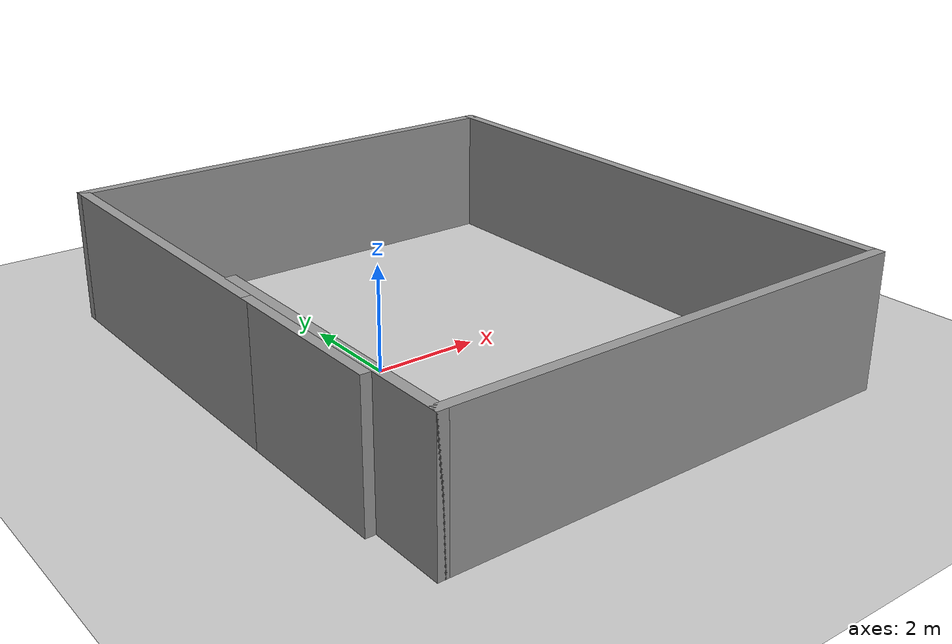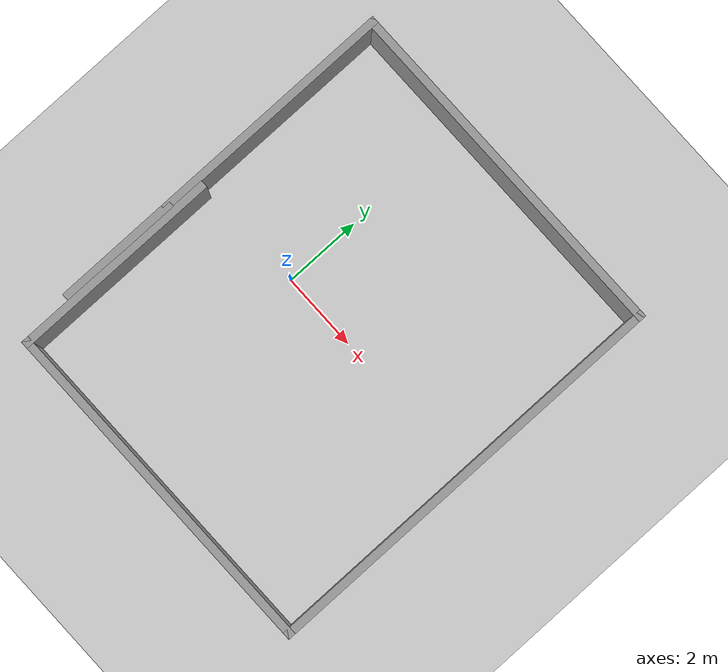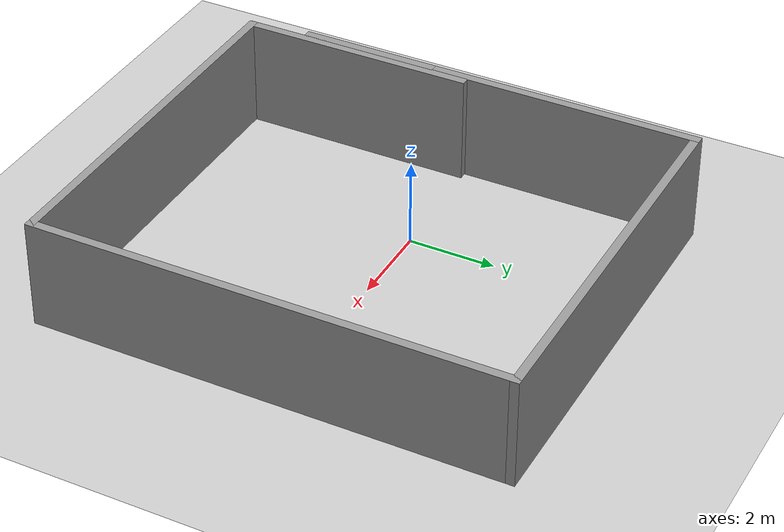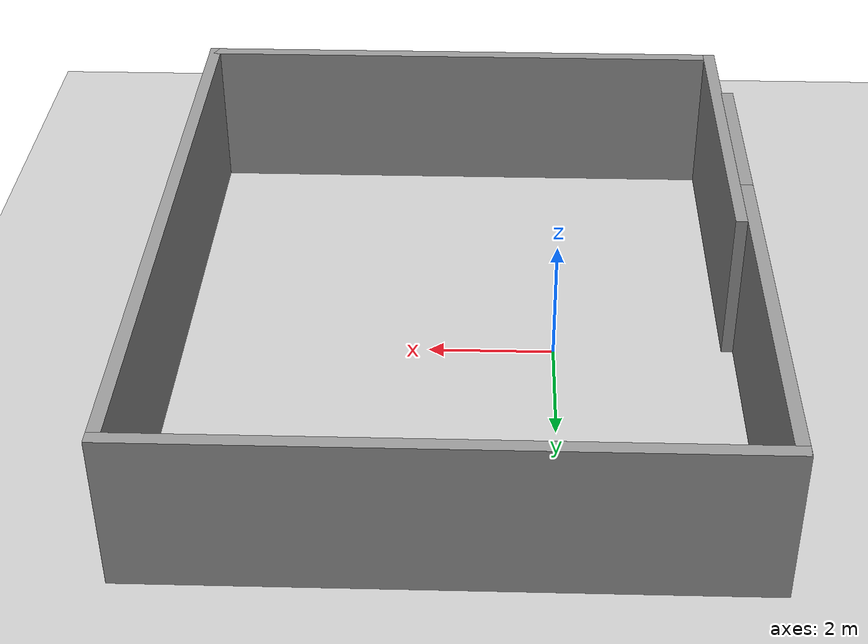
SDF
<?xml version="1.0" ?>
<sdf version='1.4'>
  <world name='default'>
    <model name='ground_plane'>
      <static>1</static>
      <link name='link'>
        <collision name='collision'>
          <geometry>
            <plane>
              <normal>0 0 1</normal>
              <size>100 100</size>
            </plane>
          </geometry>
          <surface>
            <friction>
              <ode>
                <mu>100</mu>
                <mu2>50</mu2>
              </ode>
            </friction>
            <bounce/>
            <contact>
              <ode/>
            </contact>
          </surface>
          <max_contacts>10</max_contacts>
        </collision>
        <visual name='visual'>
          <cast_shadows>0</cast_shadows>
          <geometry>
            <plane>
              <normal>0 0 1</normal>
              <size>100 100</size>
            </plane>
          </geometry>
          <material>
            <script>
              <uri>file://media/materials/scripts/gazebo.material</uri>
              <name>Gazebo/Grey</name>
            </script>
          </material>
        </visual>
        <velocity_decay>
          <linear>0</linear>
          <angular>0</angular>
        </velocity_decay>
        <self_collide>0</self_collide>
        <kinematic>0</kinematic>
        <gravity>1</gravity>
      </link>
    </model>
    <light name='sun' type='directional'>
      <cast_shadows>1</cast_shadows>
      <pose>0 0 10 0 -0 0</pose>
      <diffuse>0.8 0.8 0.8 1</diffuse>
      <specular>0.2 0.2 0.2 1</specular>
      <attenuation>
        <range>1000</range>
        <constant>0.9</constant>
        <linear>0.01</linear>
        <quadratic>0.001</quadratic>
      </attenuation>
      <direction>-0.5 0.1 -0.9</direction>
    </light>
    <physics type='ode'>
      <max_step_size>0.005</max_step_size>
      <real_time_factor>1</real_time_factor>
      <real_time_update_rate>200</real_time_update_rate>
      <gravity>0 0 -9.8</gravity>
    </physics>
    <scene>
      <ambient>0.4 0.4 0.4 1</ambient>
      <background>0.7 0.7 0.7 1</background>
      <shadows>1</shadows>
    </scene>
    <spherical_coordinates>
      <surface_model>EARTH_WGS84</surface_model>
      <latitude_deg>0</latitude_deg>
      <longitude_deg>0</longitude_deg>
      <elevation>0</elevation>
      <heading_deg>0</heading_deg>
    </spherical_coordinates>
    <gui fullscreen='0'>
      <camera name='user_camera'>
        <pose>-2.57767 -2.91132 2.87769 3.10316e-17 0.463643 0.86419</pose>
        <view_controller>orbit</view_controller>
      </camera>
    </gui>

    <include>
      <uri>model://wall_sevilla</uri>
    </include>
  </world>
</sdf>

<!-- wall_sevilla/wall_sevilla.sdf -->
<sdf version='1.4'>
  <model name='wall_sevilla'>
    <link name='Wall_16'>
      <collision name='Wall_16_Collision'>
        <geometry>
          <box>
            <size>5.4914 0.2 2.5</size>
          </box>
        </geometry>
        <pose>0 0 1.25 0 -0 0</pose>
      </collision>
      <visual name='Wall_16_Visual'>
        <pose>0 0 1.25 0 -0 0</pose>
        <geometry>
          <box>
            <size>5.4914 0.2 2.5</size>
          </box>
        </geometry>
        <material>
          <script>
            <uri>file://media/materials/scripts/gazebo.material</uri>
            <name>Gazebo/Grey</name>
          </script>
        </material>
      </visual>
      <velocity_decay>
        <linear>0</linear>
        <angular>0</angular>
      </velocity_decay>
      <pose>-2.79459 -2.82796 0 0 0 -1.5708</pose>
    </link>
    <link name='Wall_17'>
      <collision name='Wall_17_Collision'>
        <geometry>
          <box>
            <size>9.06001 0.2 2.5</size>
          </box>
        </geometry>
        <pose>0 0 1.25 0 -0 0</pose>
      </collision>
      <visual name='Wall_17_Visual'>
        <pose>0 0 1.25 0 -0 0</pose>
        <geometry>
          <box>
            <size>9.06001 0.2 2.5</size>
          </box>
        </geometry>
        <material>
          <script>
            <uri>file://media/materials/scripts/gazebo.material</uri>
            <name>Gazebo/Grey</name>
          </script>
        </material>
      </visual>
      <velocity_decay>
        <linear>0</linear>
        <angular>0</angular>
      </velocity_decay>
      <pose>1.63541 -5.47366 0 0 -0 0</pose>
    </link>
    <link name='Wall_18'>
      <collision name='Wall_18_Collision'>
        <geometry>
          <box>
            <size>10.9058 0.2 2.5</size>
          </box>
        </geometry>
        <pose>0 0 1.25 0 -0 0</pose>
      </collision>
      <visual name='Wall_18_Visual'>
        <pose>0 0 1.25 0 -0 0</pose>
        <geometry>
          <box>
            <size>10.9058 0.2 2.5</size>
          </box>
        </geometry>
        <material>
          <script>
            <uri>file://media/materials/scripts/gazebo.material</uri>
            <name>Gazebo/Grey</name>
          </script>
        </material>
      </visual>
      <velocity_decay>
        <linear>0</linear>
        <angular>0</angular>
      </velocity_decay>
      <pose>6.06542 -0.120735 0 0 -0 1.5708</pose>
    </link>
    <link name='Wall_19'>
      <collision name='Wall_19_Collision'>
        <geometry>
          <box>
            <size>9.2446 0.2 2.5</size>
          </box>
        </geometry>
        <pose>0 0 1.25 0 -0 0</pose>
      </collision>
      <visual name='Wall_19_Visual'>
        <pose>0 0 1.25 0 -0 0</pose>
        <geometry>
          <box>
            <size>9.2446 0.2 2.5</size>
          </box>
        </geometry>
        <material>
          <script>
            <uri>file://media/materials/scripts/gazebo.material</uri>
            <name>Gazebo/Grey</name>
          </script>
        </material>
      </visual>
      <velocity_decay>
        <linear>0</linear>
        <angular>0</angular>
      </velocity_decay>
      <pose>1.54312 5.23219 0 0 -0 3.14159</pose>
    </link>
    <link name='Wall_20'>
      <collision name='Wall_20_Collision'>
        <geometry>
          <box>
            <size>6.47584 0.2 2.5</size>
          </box>
        </geometry>
        <pose>0 0 1.25 0 -0 0</pose>
      </collision>
      <visual name='Wall_20_Visual'>
        <pose>0 0 1.25 0 -0 0</pose>
        <geometry>
          <box>
            <size>6.47584 0.2 2.5</size>
          </box>
        </geometry>
        <material>
          <script>
            <uri>file://media/materials/scripts/gazebo.material</uri>
            <name>Gazebo/Grey</name>
          </script>
        </material>
      </visual>
      <velocity_decay>
        <linear>0</linear>
        <angular>0</angular>
      </velocity_decay>
      <pose>-2.97918 2.09427 0 0 0 -1.5708</pose>
    </link>
    <link name='Wall_21'>
      <collision name='Wall_21_Collision'>
        <geometry>
          <box>
            <size>3.21487 0.2 2.5</size>
          </box>
        </geometry>
        <pose>0 0 1.25 0 -0 0</pose>
      </collision>
      <visual name='Wall_21_Visual'>
        <pose>0 0 1.25 0 -0 0</pose>
        <geometry>
          <box>
            <size>3.21487 0.2 2.5</size>
          </box>
        </geometry>
        <material>
          <script>
            <uri>file://media/materials/scripts/gazebo.material</uri>
            <name>Gazebo/Grey</name>
          </script>
        </material>
      </visual>
      <velocity_decay>
        <linear>0</linear>
        <angular>0</angular>
      </velocity_decay>
      <pose>-2.97918 -2.55109 0 0 0 -1.5708</pose>
    </link>
    <static>1</static>
  </model>
</sdf>
